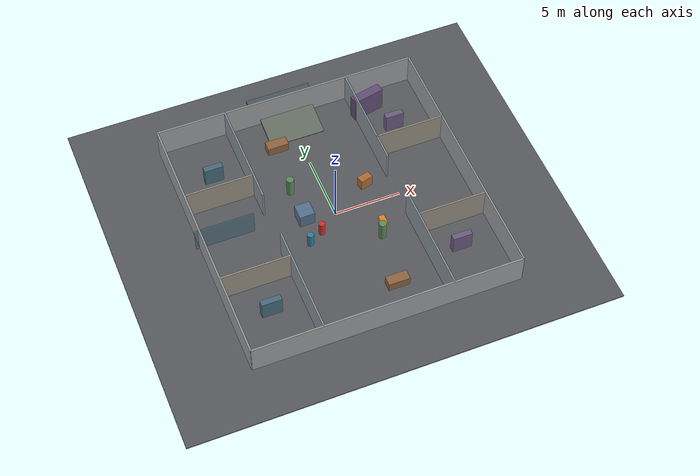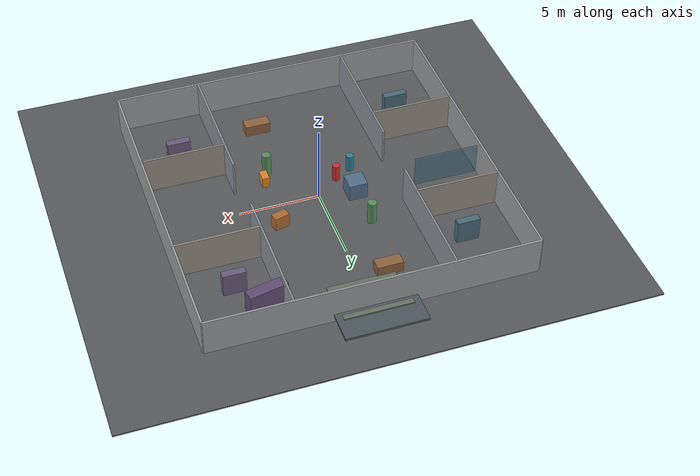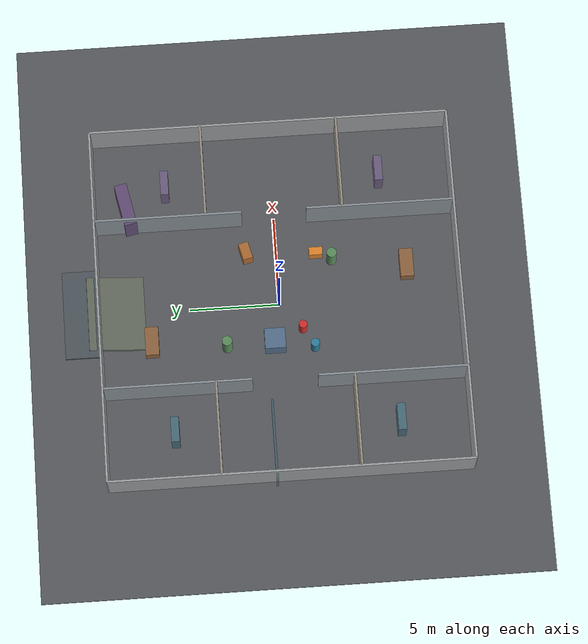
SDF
<?xml version="1.0"?>
<sdf version="1.8">
  <world name="advanced_indoor_ramp">
    <plugin name="gz::sim::systems::Physics" filename="ignition-gazebo-physics-system"/>
    <plugin name="gz::sim::systems::UserCommands" filename="ignition-gazebo-user-commands-system"/>
    <plugin name="gz::sim::systems::SceneBroadcaster" filename="ignition-gazebo-scene-broadcaster-system"/>
    <plugin name="gz::sim::systems::Sensors" filename="ignition-gazebo-sensors-system">
      <render_engine>ogre2</render_engine>
    </plugin>
    <plugin name="gz::sim::systems::Imu" filename="ignition-gazebo-imu-system"/>

    <physics name="fast_visual_physics" type="ignored">
      <max_step_size>0.01</max_step_size>
      <real_time_update_rate>100</real_time_update_rate>
      <real_time_factor>1.0</real_time_factor>
    </physics>
    <gravity>0 0 -9.8</gravity>
    <magnetic_field>6.0e-06 2.3e-05 -4.2e-05</magnetic_field>
    <scene>
      <ambient>0.65 0.65 0.68 1</ambient>
      <background>0.16 0.18 0.20 1</background>
      <shadows>false</shadows>
    </scene>

    <gui fullscreen="0">
      <camera name="user_camera">
        <pose>7.8 -8.0 4.4 0 0.55 2.38</pose>
        <projection_type>perspective</projection_type>
      </camera>
    </gui>

    <light name="sun" type="directional">
      <cast_shadows>false</cast_shadows>
      <pose>0 0 12 0 0 0</pose>
      <diffuse>0.95 0.95 0.95 1</diffuse>
      <specular>0.15 0.15 0.15 1</specular>
      <attenuation>
        <range>1000</range>
        <constant>0.9</constant>
        <linear>0.01</linear>
        <quadratic>0.001</quadratic>
      </attenuation>
      <direction>-0.35 0.25 -1</direction>
    </light>

    <model name="floor">
      <static>true</static>
      <link name="link">
        <collision name="collision">
          <geometry><box><size>32 28 0.1</size></box></geometry>
          <pose>0 0 -0.05 0 0 0</pose>
        </collision>
        <visual name="visual">
          <geometry><box><size>32 28 0.1</size></box></geometry>
          <pose>0 0 -0.05 0 0 0</pose>
          <material>
            <ambient>0.34 0.35 0.36 1</ambient>
            <diffuse>0.34 0.35 0.36 1</diffuse>
          </material>
        </visual>
      </link>
    </model>

    <model name="wall_north">
      <static>true</static>
      <pose>0 10 1.2 0 0 0</pose>
      <link name="link">
        <collision name="collision"><geometry><box><size>20 0.12 2.4</size></box></geometry></collision>
        <visual name="visual"><geometry><box><size>20 0.12 2.4</size></box></geometry><material><ambient>0.62 0.63 0.64 1</ambient><diffuse>0.62 0.63 0.64 1</diffuse></material></visual>
      </link>
    </model>
    <model name="wall_south">
      <static>true</static>
      <pose>0 -10 1.2 0 0 0</pose>
      <link name="link">
        <collision name="collision"><geometry><box><size>20 0.12 2.4</size></box></geometry></collision>
        <visual name="visual"><geometry><box><size>20 0.12 2.4</size></box></geometry><material><ambient>0.62 0.63 0.64 1</ambient><diffuse>0.62 0.63 0.64 1</diffuse></material></visual>
      </link>
    </model>
    <model name="wall_west">
      <static>true</static>
      <pose>-10 0 1.2 0 0 0</pose>
      <link name="link">
        <collision name="collision"><geometry><box><size>0.12 20 2.4</size></box></geometry></collision>
        <visual name="visual"><geometry><box><size>0.12 20 2.4</size></box></geometry><material><ambient>0.62 0.63 0.64 1</ambient><diffuse>0.62 0.63 0.64 1</diffuse></material></visual>
      </link>
    </model>
    <model name="wall_east">
      <static>true</static>
      <pose>10 0 1.2 0 0 0</pose>
      <link name="link">
        <collision name="collision"><geometry><box><size>0.12 20 2.4</size></box></geometry></collision>
        <visual name="visual"><geometry><box><size>0.12 20 2.4</size></box></geometry><material><ambient>0.62 0.63 0.64 1</ambient><diffuse>0.62 0.63 0.64 1</diffuse></material></visual>
      </link>
    </model>

    <model name="west_partition_lower">
      <static>true</static>
      <pose>-4.8 -5.9 1.2 0 0 0</pose>
      <link name="link">
        <collision name="collision"><geometry><box><size>0.12 8.2 2.4</size></box></geometry></collision>
        <visual name="visual"><geometry><box><size>0.12 8.2 2.4</size></box></geometry><material><ambient>0.55 0.58 0.61 1</ambient><diffuse>0.55 0.58 0.61 1</diffuse></material></visual>
      </link>
    </model>
    <model name="west_partition_upper">
      <static>true</static>
      <pose>-4.8 5.9 1.2 0 0 0</pose>
      <link name="link">
        <collision name="collision"><geometry><box><size>0.12 8.2 2.4</size></box></geometry></collision>
        <visual name="visual"><geometry><box><size>0.12 8.2 2.4</size></box></geometry><material><ambient>0.55 0.58 0.61 1</ambient><diffuse>0.55 0.58 0.61 1</diffuse></material></visual>
      </link>
    </model>
    <model name="east_partition_lower">
      <static>true</static>
      <pose>4.8 -5.9 1.2 0 0 0</pose>
      <link name="link">
        <collision name="collision"><geometry><box><size>0.12 8.2 2.4</size></box></geometry></collision>
        <visual name="visual"><geometry><box><size>0.12 8.2 2.4</size></box></geometry><material><ambient>0.55 0.58 0.61 1</ambient><diffuse>0.55 0.58 0.61 1</diffuse></material></visual>
      </link>
    </model>
    <model name="east_partition_upper">
      <static>true</static>
      <pose>4.8 5.9 1.2 0 0 0</pose>
      <link name="link">
        <collision name="collision"><geometry><box><size>0.12 8.2 2.4</size></box></geometry></collision>
        <visual name="visual"><geometry><box><size>0.12 8.2 2.4</size></box></geometry><material><ambient>0.55 0.58 0.61 1</ambient><diffuse>0.55 0.58 0.61 1</diffuse></material></visual>
      </link>
    </model>

    <model name="south_cross_left">
      <static>true</static>
      <pose>-7.4 -3.8 1.2 0 0 0</pose>
      <link name="link">
        <collision name="collision"><geometry><box><size>5.2 0.12 2.4</size></box></geometry></collision>
        <visual name="visual"><geometry><box><size>5.2 0.12 2.4</size></box></geometry><material><ambient>0.60 0.57 0.52 1</ambient><diffuse>0.60 0.57 0.52 1</diffuse></material></visual>
      </link>
    </model>
    <model name="south_cross_right">
      <static>true</static>
      <pose>7.4 -3.8 1.2 0 0 0</pose>
      <link name="link">
        <collision name="collision"><geometry><box><size>5.2 0.12 2.4</size></box></geometry></collision>
        <visual name="visual"><geometry><box><size>5.2 0.12 2.4</size></box></geometry><material><ambient>0.60 0.57 0.52 1</ambient><diffuse>0.60 0.57 0.52 1</diffuse></material></visual>
      </link>
    </model>
    <model name="north_cross_left">
      <static>true</static>
      <pose>-7.4 3.8 1.2 0 0 0</pose>
      <link name="link">
        <collision name="collision"><geometry><box><size>5.2 0.12 2.4</size></box></geometry></collision>
        <visual name="visual"><geometry><box><size>5.2 0.12 2.4</size></box></geometry><material><ambient>0.60 0.57 0.52 1</ambient><diffuse>0.60 0.57 0.52 1</diffuse></material></visual>
      </link>
    </model>
    <model name="north_cross_right">
      <static>true</static>
      <pose>7.4 3.8 1.2 0 0 0</pose>
      <link name="link">
        <collision name="collision"><geometry><box><size>5.2 0.12 2.4</size></box></geometry></collision>
        <visual name="visual"><geometry><box><size>5.2 0.12 2.4</size></box></geometry><material><ambient>0.60 0.57 0.52 1</ambient><diffuse>0.60 0.57 0.52 1</diffuse></material></visual>
      </link>
    </model>

    <model name="central_service_island">
      <static>true</static>
      <pose>-2.2 0.4 0.55 0 0 0</pose>
      <link name="link">
        <collision name="collision"><geometry><box><size>1.15 1.15 1.1</size></box></geometry></collision>
        <visual name="visual"><geometry><box><size>1.15 1.15 1.1</size></box></geometry><material><ambient>0.33 0.44 0.55 1</ambient><diffuse>0.33 0.44 0.55 1</diffuse></material></visual>
      </link>
    </model>
    <model name="rack_west_a">
      <static>true</static>
      <pose>-7.1 6.2 0.75 0 0 0</pose>
      <link name="link">
        <collision name="collision"><geometry><box><size>1.4 0.45 1.5</size></box></geometry></collision>
        <visual name="visual"><geometry><box><size>1.4 0.45 1.5</size></box></geometry><material><ambient>0.28 0.42 0.48 1</ambient><diffuse>0.28 0.42 0.48 1</diffuse></material></visual>
      </link>
    </model>
    <model name="rack_west_b">
      <static>true</static>
      <pose>-7.2 -6.2 0.75 0 0 0</pose>
      <link name="link">
        <collision name="collision"><geometry><box><size>1.5 0.45 1.5</size></box></geometry></collision>
        <visual name="visual"><geometry><box><size>1.5 0.45 1.5</size></box></geometry><material><ambient>0.28 0.42 0.48 1</ambient><diffuse>0.28 0.42 0.48 1</diffuse></material></visual>
      </link>
    </model>
    <model name="rack_east_a">
      <static>true</static>
      <pose>7.1 6.0 0.75 0 0 0</pose>
      <link name="link">
        <collision name="collision"><geometry><box><size>1.4 0.45 1.5</size></box></geometry></collision>
        <visual name="visual"><geometry><box><size>1.4 0.45 1.5</size></box></geometry><material><ambient>0.42 0.36 0.50 1</ambient><diffuse>0.42 0.36 0.50 1</diffuse></material></visual>
      </link>
    </model>
    <model name="rack_east_b">
      <static>true</static>
      <pose>7.2 -6.0 0.75 0 0 0</pose>
      <link name="link">
        <collision name="collision"><geometry><box><size>1.45 0.45 1.5</size></box></geometry></collision>
        <visual name="visual"><geometry><box><size>1.45 0.45 1.5</size></box></geometry><material><ambient>0.42 0.36 0.50 1</ambient><diffuse>0.42 0.36 0.50 1</diffuse></material></visual>
      </link>
    </model>
    <model name="desk_north">
      <static>true</static>
      <pose>-1.8 7.2 0.35 0 0 0</pose>
      <link name="link">
        <collision name="collision"><geometry><box><size>1.6 0.75 0.7</size></box></geometry></collision>
        <visual name="visual"><geometry><box><size>1.6 0.75 0.7</size></box></geometry><material><ambient>0.56 0.39 0.25 1</ambient><diffuse>0.56 0.39 0.25 1</diffuse></material></visual>
      </link>
    </model>
    <model name="desk_south">
      <static>true</static>
      <pose>1.8 -7.2 0.35 0 0 0</pose>
      <link name="link">
        <collision name="collision"><geometry><box><size>1.6 0.75 0.7</size></box></geometry></collision>
        <visual name="visual"><geometry><box><size>1.6 0.75 0.7</size></box></geometry><material><ambient>0.56 0.39 0.25 1</ambient><diffuse>0.56 0.39 0.25 1</diffuse></material></visual>
      </link>
    </model>
    <model name="column_north_west">
      <static>true</static>
      <pose>-2.3 3.05 0.75 0 0 0</pose>
      <link name="link">
        <collision name="collision"><geometry><cylinder><radius>0.28</radius><length>1.5</length></cylinder></geometry></collision>
        <visual name="visual"><geometry><cylinder><radius>0.28</radius><length>1.5</length></cylinder></geometry><material><ambient>0.35 0.55 0.36 1</ambient><diffuse>0.35 0.55 0.36 1</diffuse></material></visual>
      </link>
    </model>
    <model name="column_south_east">
      <static>true</static>
      <pose>2.4 -3.05 0.75 0 0 0</pose>
      <link name="link">
        <collision name="collision"><geometry><cylinder><radius>0.28</radius><length>1.5</length></cylinder></geometry></collision>
        <visual name="visual"><geometry><cylinder><radius>0.28</radius><length>1.5</length></cylinder></geometry><material><ambient>0.35 0.55 0.36 1</ambient><diffuse>0.35 0.55 0.36 1</diffuse></material></visual>
      </link>
    </model>
    <model name="inspection_cart">
      <static>true</static>
      <pose>3.0 1.7 0.45 0 0 0.25</pose>
      <link name="link">
        <collision name="collision"><geometry><box><size>0.95 0.55 0.9</size></box></geometry></collision>
        <visual name="visual"><geometry><box><size>0.95 0.55 0.9</size></box></geometry><material><ambient>0.68 0.42 0.20 1</ambient><diffuse>0.68 0.42 0.20 1</diffuse></material></visual>
      </link>
    </model>
    <model name="charging_pillar">
      <static>true</static>
      <pose>-2.6 -1.8 0.55 0 0 0</pose>
      <link name="link">
        <collision name="collision"><geometry><cylinder><radius>0.24</radius><length>1.1</length></cylinder></geometry></collision>
        <visual name="visual"><geometry><cylinder><radius>0.24</radius><length>1.1</length></cylinder></geometry><material><ambient>0.18 0.50 0.62 1</ambient><diffuse>0.18 0.50 0.62 1</diffuse></material></visual>
      </link>
    </model>

    <model name="ramp_main">
      <static>true</static>
      <pose>0 9.1 0.24 0.18 0 0</pose>
      <link name="link">
        <collision name="collision"><geometry><box><size>4.2 3.2 0.22</size></box></geometry></collision>
        <visual name="visual"><geometry><box><size>4.2 3.2 0.22</size></box></geometry><material><ambient>0.42 0.45 0.40 1</ambient><diffuse>0.42 0.45 0.40 1</diffuse></material></visual>
      </link>
    </model>

    <model name="upper_platform_visual">
      <static>true</static>
      <pose>0 11.0 0.48 0 0 0</pose>
      <link name="link">
        <collision name="collision"><geometry><box><size>5.0 2.0 0.16</size></box></geometry></collision>
        <visual name="visual"><geometry><box><size>5.0 2.0 0.16</size></box></geometry><material><ambient>0.30 0.34 0.36 1</ambient><diffuse>0.30 0.34 0.36 1</diffuse></material></visual>
      </link>
    </model>

    <model name="glass_lab_partition_a">
      <static>true</static>
      <pose>-8.1 0.8 1.0 0 0 1.5708</pose>
      <link name="link">
        <collision name="collision"><geometry><box><size>0.10 4.4 2.0</size></box></geometry></collision>
        <visual name="visual"><geometry><box><size>0.10 4.4 2.0</size></box></geometry><material><ambient>0.20 0.42 0.52 0.45</ambient><diffuse>0.20 0.42 0.52 0.45</diffuse></material></visual>
      </link>
    </model>

    <model name="dense_shelf_north">
      <static>true</static>
      <pose>5.8 8.2 1.0 0 0 0.2</pose>
      <link name="link">
        <collision name="collision"><geometry><box><size>2.4 0.7 2.0</size></box></geometry></collision>
        <visual name="visual"><geometry><box><size>2.4 0.7 2.0</size></box></geometry><material><ambient>0.38 0.30 0.46 1</ambient><diffuse>0.38 0.30 0.46 1</diffuse></material></visual>
      </link>
    </model>

    <model name="moving_pedestrian">
      <static>false</static>
      <pose>-1.5 -1.2 0.55 0 0 0</pose>
      <link name="body">
        <inertial><mass>45</mass></inertial>
        <collision name="collision"><geometry><cylinder><radius>0.23</radius><length>1.1</length></cylinder></geometry></collision>
        <visual name="visual"><geometry><cylinder><radius>0.23</radius><length>1.1</length></cylinder></geometry><material><ambient>0.82 0.18 0.18 1</ambient><diffuse>0.82 0.18 0.18 1</diffuse></material></visual>
      </link>
      <plugin filename="ignition-gazebo-velocity-control-system" name="gz::sim::systems::VelocityControl">
        <topic>cmd_vel</topic>
      </plugin>
    </model>

    <model name="inspection_cart_dynamic">
      <static>false</static>
      <pose>2.8 -2.2 0.35 0 0 1.5708</pose>
      <link name="body">
        <inertial><mass>12</mass></inertial>
        <collision name="collision"><geometry><box><size>0.75 0.45 0.7</size></box></geometry></collision>
        <visual name="visual"><geometry><box><size>0.75 0.45 0.7</size></box></geometry><material><ambient>0.88 0.52 0.16 1</ambient><diffuse>0.88 0.52 0.16 1</diffuse></material></visual>
      </link>
      <plugin filename="ignition-gazebo-velocity-control-system" name="gz::sim::systems::VelocityControl">
        <topic>cmd_vel</topic>
      </plugin>
    </model>

    <plugin filename="ignition-gazebo-triggered-publisher-system" name="gz::sim::systems::TriggeredPublisher">
      <input type="ignition.msgs.Empty" topic="/airos/advanced_indoor_ramp/start_dynamic_obstacles"/>
      <output type="ignition.msgs.Twist" topic="/model/moving_pedestrian/cmd_vel">
        linear: {y: 0.22}
      </output>
    </plugin>
    <plugin filename="ignition-gazebo-triggered-publisher-system" name="gz::sim::systems::TriggeredPublisher">
      <input type="ignition.msgs.Empty" topic="/airos/advanced_indoor_ramp/start_dynamic_obstacles"/>
      <output type="ignition.msgs.Twist" topic="/model/inspection_cart_dynamic/cmd_vel">
        linear: {x: 0.18}
      </output>
    </plugin>
  </world>
</sdf>
